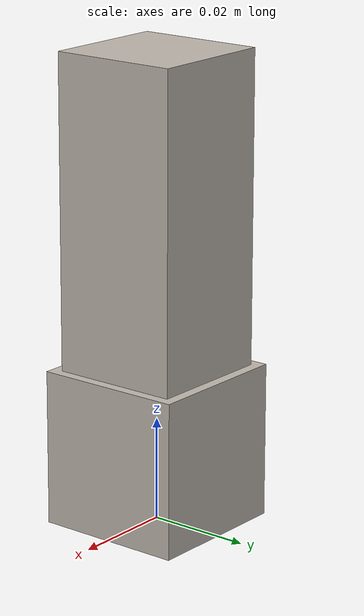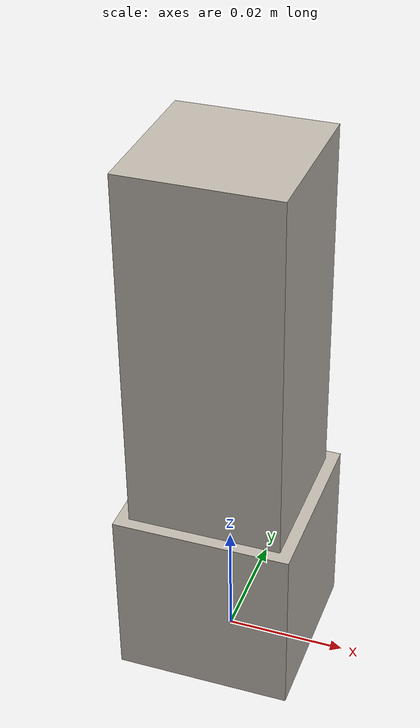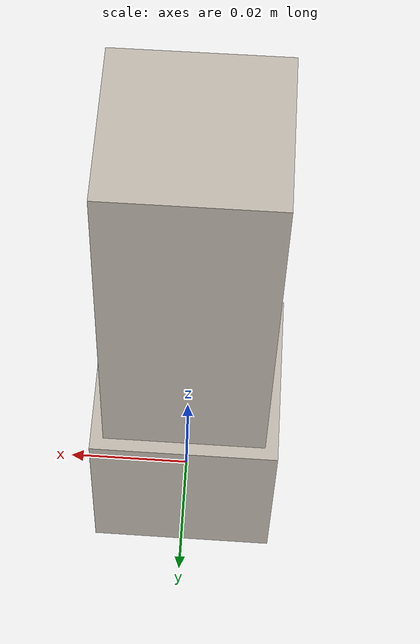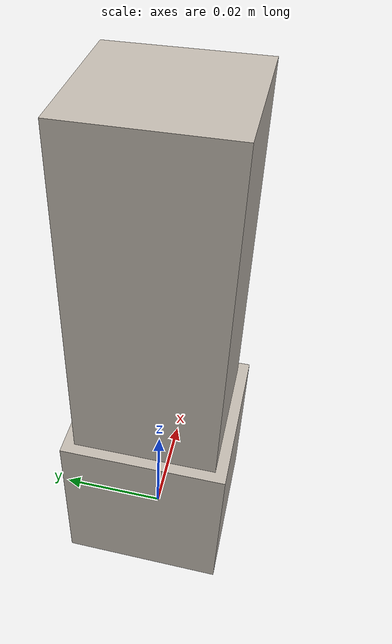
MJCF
<mujoco model="custom-peg">
  <asset>
    <texture file="../textures/brass-ambra.png" type="cube" name="brass-metal"/>
    <material name="bmetal"  reflectance="1.0" shininess="1.0" specular="1.0" texrepeat="1 1" texture="brass-metal" texuniform="true"/>
  </asset>
  <worldbody>
    <body>
      <body name="object">
        <geom type="box" size="0.0145 0.0145 0.015" pos="0 0 0.015" solimp="0.998 0.998 0.001" solref="0.02 1" density="100" friction="0.95 0.3 0.1" group="0" condim="4" material="bmetal"/>
        <geom type="box" pos="0 0 0.06" size="0.0125 0.0125 0.03" solimp="0.998 0.998 0.001" solref="0.02 1" density="100" friction="0.95 0.3 0.1" group="0" condim="4" material="bmetal" />
        <site rgba="0 0 0 0" size="0.005" pos="0 0 0.06" name="grip_site"/>
      </body>
      <site rgba="0 0 0 0" size="0.005" pos="0 0 0" name="bottom_site"/>
      <site rgba="0 0 0 0" size="0.005" pos="0 0 0.09" name="top_site"/>
      <site rgba="0 0 0 0" size="0.005" pos="0 0 0" name="horizontal_radius_site"/>
    </body>
  </worldbody>
</mujoco>
